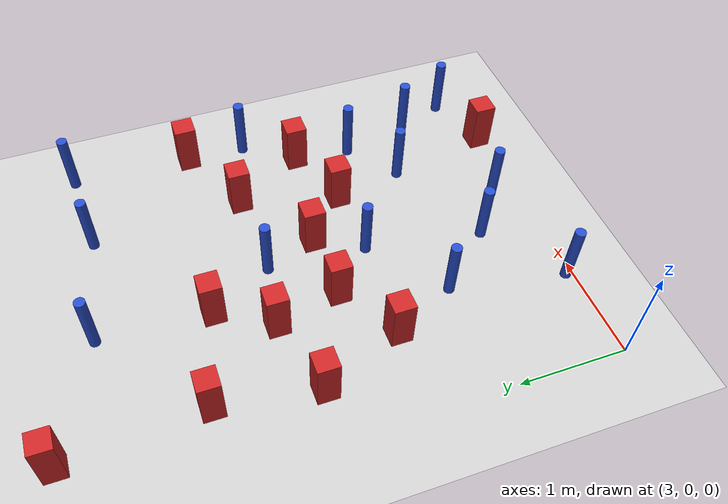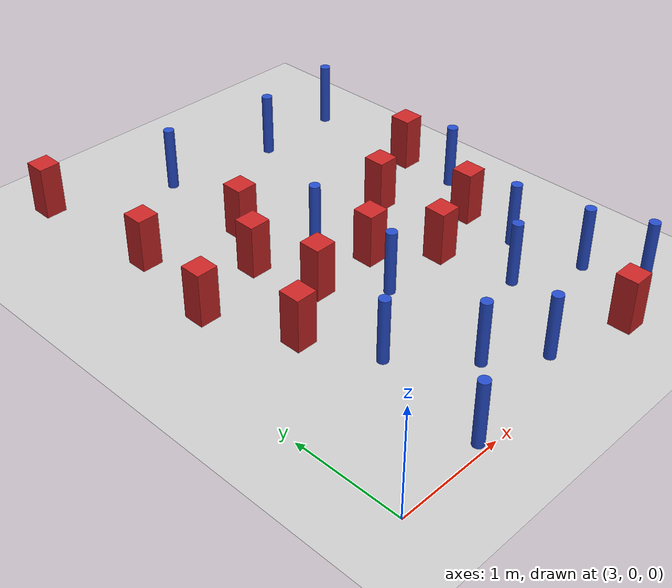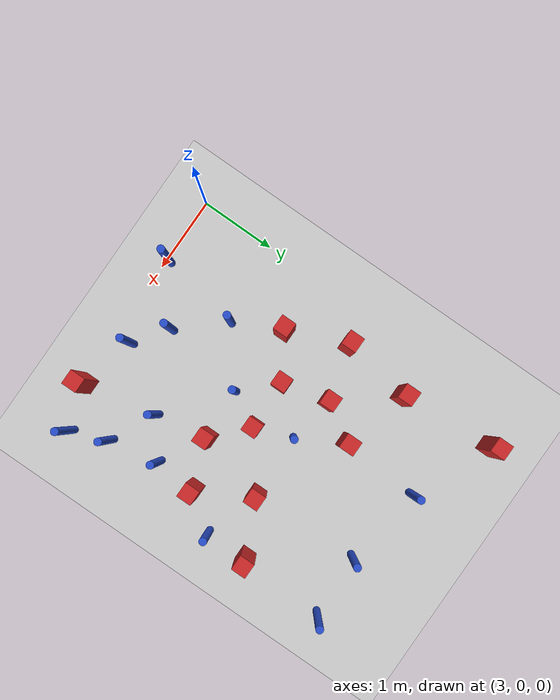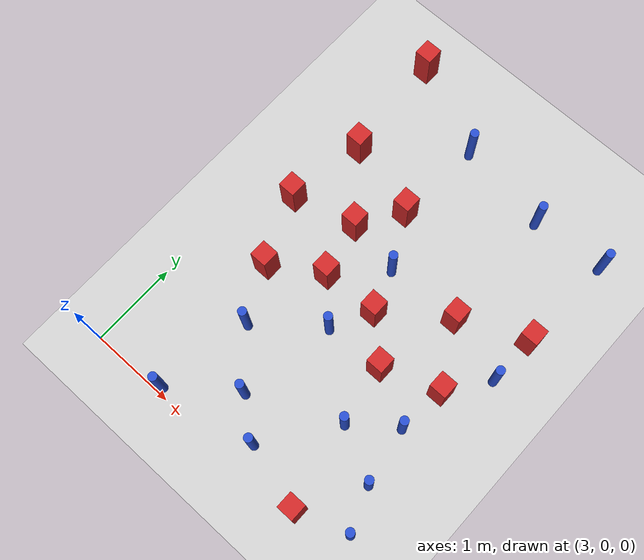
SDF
<sdf version="1.6">
 <world name="default">
  <model name="ground_plane">
   <static>1</static>
   <link name="link">
    <collision name="collision">
     <geometry><plane><normal>0 0 1</normal><size>100 100</size></plane></geometry>
     <surface><friction><ode><mu>100</mu><mu2>50</mu2></ode></friction></surface>
    </collision>
    <visual name="visual">
     <cast_shadows>0</cast_shadows>
     <geometry><plane><normal>0 0 1</normal><size>100 100</size></plane></geometry>
     <material>
      <ambient>1.0 1.0 1.0 1.0</ambient>
      <diffuse>0.8 0.8 0.8 1.0</diffuse>
      <specular>0.01 0.01 0.01 1.000000</specular>
     </material>
    </visual>
   </link>
  </model>
  <model name="pole_obstacle9">
   <static>true</static>
   <pose>4.5817701289 0.596697649328 7.38925637345e-09 -8.47170692799e-08 1.24976765038e-08 -1.74513093018e-07</pose>
   <link name="link">
    <pose>0 0 0.3 0 -0 0</pose>
    <inertial>
     <mass>1</mass>
     <inertia><ixx>0.145833</ixx><ixy>0</ixy><ixz>0</ixz><iyy>0.145833</iyy><iyz>0</iyz><izz>0.125</izz></inertia>
    </inertial>
    <collision name="collision">
     <geometry><cylinder><radius>0.05</radius><length>.6</length></cylinder></geometry>
    </collision>
    <visual name="visual">
     <geometry><cylinder><radius>0.05</radius><length>.6</length></cylinder></geometry>
     <material>
      <script><name>Gazebo/Blue</name><uri>file://media/materials/scripts/gazebo.material</uri></script>
     </material>
    </visual>
   </link>
  </model>
  <model name="pole_obstacle10">
   <static>true</static>
   <pose>5.64205923662 4.10121407407 7.38925637345e-09 -8.47170692796e-08 1.24976764786e-08 -1.74513093032e-07</pose>
   <link name="link">
    <pose>0 0 0.3 0 -0 0</pose>
    <inertial>
     <mass>1</mass>
     <inertia><ixx>0.145833</ixx><ixy>0</ixy><ixz>0</ixz><iyy>0.145833</iyy><iyz>0</iyz><izz>0.125</izz></inertia>
    </inertial>
    <collision name="collision">
     <geometry><cylinder><radius>0.05</radius><length>.6</length></cylinder></geometry>
    </collision>
    <visual name="visual">
     <geometry><cylinder><radius>0.05</radius><length>.6</length></cylinder></geometry>
     <material>
      <script><name>Gazebo/Blue</name><uri>file://media/materials/scripts/gazebo.material</uri></script>
     </material>
    </visual>
   </link>
  </model>
  <model name="pole_obstacle11">
   <static>true</static>
   <pose>4.08247064523 1.15306410399 7.38925637345e-09 -8.471706928e-08 1.24976765134e-08 -1.74513093015e-07</pose>
   <link name="link">
    <pose>0 0 0.3 0 -0 0</pose>
    <inertial>
     <mass>1</mass>
     <inertia><ixx>0.145833</ixx><ixy>0</ixy><ixz>0</ixz><iyy>0.145833</iyy><iyz>0</iyz><izz>0.125</izz></inertia>
    </inertial>
    <collision name="collision">
     <geometry><cylinder><radius>0.05</radius><length>.6</length></cylinder></geometry>
    </collision>
    <visual name="visual">
     <geometry><cylinder><radius>0.05</radius><length>.6</length></cylinder></geometry>
     <material>
      <script><name>Gazebo/Blue</name><uri>file://media/materials/scripts/gazebo.material</uri></script>
     </material>
    </visual>
   </link>
  </model>
  <model name="pole_obstacle13">
   <static>true</static>
   <pose>4.76619048261 1.69995667515 7.38925637345e-09 -8.471706928e-08 1.24976765134e-08 -1.74513093015e-07</pose>
   <link name="link">
    <pose>0 0 0.3 0 -0 0</pose>
    <inertial>
     <mass>1</mass>
     <inertia><ixx>0.145833</ixx><ixy>0</ixy><ixz>0</ixz><iyy>0.145833</iyy><iyz>0</iyz><izz>0.125</izz></inertia>
    </inertial>
    <collision name="collision">
     <geometry><cylinder><radius>0.05</radius><length>.6</length></cylinder></geometry>
    </collision>
    <visual name="visual">
     <geometry><cylinder><radius>0.05</radius><length>.6</length></cylinder></geometry>
     <material>
      <script><name>Gazebo/Blue</name><uri>file://media/materials/scripts/gazebo.material</uri></script>
     </material>
    </visual>
   </link>
  </model>
  <model name="square_post_obstacle13">
   <static>true</static>
   <pose>5.76506913279 0.0766682827222 1.91545236811e-07 -7.35059704564e-06 1.12565212e-07 2.39332434364e-05</pose>
   <link name="link">
    <pose>0 0 0.25 0 -0 0</pose>
    <inertial>
     <mass>100</mass>
     <inertia>
      <ixx>0.166667</ixx>
      <ixy>0</ixy>
      <ixz>0</ixz>
      <iyy>0.166667</iyy>
      <iyz>0</iyz>
      <izz>0.166667</izz>
     </inertia>
    </inertial>
    <collision name="collision"><geometry><box><size>.2 .2 .5</size></box></geometry></collision>
    <visual name="visual">
     <geometry><box><size>.2 .2 .5</size></box></geometry>
     <material>
      <script><name>Gazebo/Red</name><uri>file://media/materials/scripts/gazebo.material</uri></script>
     </material>
    </visual>
   </link>
  </model>
  <model name="square_post_obstacle31">
   <static>true</static>
   <pose>3.61120528066 3.46467088558 1.91545236811e-07 -7.35059704564e-06 1.12565212e-07 2.39332434364e-05</pose>
   <link name="link">
    <pose>0 0 0.25 0 -0 0</pose>
    <inertial>
     <mass>100</mass>
     <inertia>
      <ixx>0.166667</ixx>
      <ixy>0</ixy>
      <ixz>0</ixz>
      <iyy>0.166667</iyy>
      <iyz>0</iyz>
      <izz>0.166667</izz>
     </inertia>
    </inertial>
    <collision name="collision"><geometry><box><size>.2 .2 .5</size></box></geometry></collision>
    <visual name="visual">
     <geometry><box><size>.2 .2 .5</size></box></geometry>
     <material>
      <script><name>Gazebo/Red</name><uri>file://media/materials/scripts/gazebo.material</uri></script>
     </material>
    </visual>
   </link>
  </model>
  <model name="square_post_obstacle43">
   <static>true</static>
   <pose>3.46947250892 2.54650748216 1.91545236811e-07 -7.35059704564e-06 1.12565212e-07 2.39332434364e-05</pose>
   <link name="link">
    <pose>0 0 0.25 0 -0 0</pose>
    <inertial>
     <mass>100</mass>
     <inertia>
      <ixx>0.166667</ixx>
      <ixy>0</ixy>
      <ixz>0</ixz>
      <iyy>0.166667</iyy>
      <iyz>0</iyz>
      <izz>0.166667</izz>
     </inertia>
    </inertial>
    <collision name="collision"><geometry><box><size>.2 .2 .5</size></box></geometry></collision>
    <visual name="visual">
     <geometry><box><size>.2 .2 .5</size></box></geometry>
     <material>
      <script><name>Gazebo/Red</name><uri>file://media/materials/scripts/gazebo.material</uri></script>
     </material>
    </visual>
   </link>
  </model>
  <model name="pole_obstacle72">
   <static>true</static>
   <pose>6.16637277579 0.757675020127 7.38925637345e-09 -8.47170692799e-08 1.24976765038e-08 -1.74513093018e-07</pose>
   <link name="link">
    <pose>0 0 0.3 0 -0 0</pose>
    <inertial>
     <mass>1</mass>
     <inertia><ixx>0.145833</ixx><ixy>0</ixy><ixz>0</ixz><iyy>0.145833</iyy><iyz>0</iyz><izz>0.125</izz></inertia>
    </inertial>
    <collision name="collision">
     <geometry><cylinder><radius>0.05</radius><length>.6</length></cylinder></geometry>
    </collision>
    <visual name="visual">
     <geometry><cylinder><radius>0.05</radius><length>.6</length></cylinder></geometry>
     <material>
      <script><name>Gazebo/Blue</name><uri>file://media/materials/scripts/gazebo.material</uri></script>
     </material>
    </visual>
   </link>
  </model>
  <model name="square_post_obstacle84">
   <static>true</static>
   <pose>6.42989580042 3.0022363274 1.91545236811e-07 -7.35059704564e-06 1.12565212e-07 2.39332434364e-05</pose>
   <link name="link">
    <pose>0 0 0.25 0 -0 0</pose>
    <inertial>
     <mass>100</mass>
     <inertia>
      <ixx>0.166667</ixx>
      <ixy>0</ixy>
      <ixz>0</ixz>
      <iyy>0.166667</iyy>
      <iyz>0</iyz>
      <izz>0.166667</izz>
     </inertia>
    </inertial>
    <collision name="collision"><geometry><box><size>.2 .2 .5</size></box></geometry></collision>
    <visual name="visual">
     <geometry><box><size>.2 .2 .5</size></box></geometry>
     <material>
      <script><name>Gazebo/Red</name><uri>file://media/materials/scripts/gazebo.material</uri></script>
     </material>
    </visual>
   </link>
  </model>
  <model name="square_post_obstacle88">
   <static>true</static>
   <pose>4.34995348564 2.1222153509 1.91545236811e-07 -7.35059704564e-06 1.12565212e-07 2.39332434364e-05</pose>
   <link name="link">
    <pose>0 0 0.25 0 -0 0</pose>
    <inertial>
     <mass>100</mass>
     <inertia>
      <ixx>0.166667</ixx>
      <ixy>0</ixy>
      <ixz>0</ixz>
      <iyy>0.166667</iyy>
      <iyz>0</iyz>
      <izz>0.166667</izz>
     </inertia>
    </inertial>
    <collision name="collision"><geometry><box><size>.2 .2 .5</size></box></geometry></collision>
    <visual name="visual">
     <geometry><box><size>.2 .2 .5</size></box></geometry>
     <material>
      <script><name>Gazebo/Red</name><uri>file://media/materials/scripts/gazebo.material</uri></script>
     </material>
    </visual>
   </link>
  </model>
  <model name="pole_obstacle100">
   <static>true</static>
   <pose>4.56393103715 4.26243662734 7.38925637345e-09 -8.47170692796e-08 1.24976764786e-08 -1.74513093032e-07</pose>
   <link name="link">
    <pose>0 0 0.3 0 -0 0</pose>
    <inertial>
     <mass>1</mass>
     <inertia><ixx>0.145833</ixx><ixy>0</ixy><ixz>0</ixz><iyy>0.145833</iyy><iyz>0</iyz><izz>0.125</izz></inertia>
    </inertial>
    <collision name="collision">
     <geometry><cylinder><radius>0.05</radius><length>.6</length></cylinder></geometry>
    </collision>
    <visual name="visual">
     <geometry><cylinder><radius>0.05</radius><length>.6</length></cylinder></geometry>
     <material>
      <script><name>Gazebo/Blue</name><uri>file://media/materials/scripts/gazebo.material</uri></script>
     </material>
    </visual>
   </link>
  </model>
  <model name="square_post_obstacle93">
   <static>true</static>
   <pose>4.50042449982 3.22805243353 1.91545236811e-07 -7.35059704564e-06 1.12565212e-07 2.39332434364e-05</pose>
   <link name="link">
    <pose>0 0 0.25 0 -0 0</pose>
    <inertial>
     <mass>100</mass>
     <inertia>
      <ixx>0.166667</ixx>
      <ixy>0</ixy>
      <ixz>0</ixz>
      <iyy>0.166667</iyy>
      <iyz>0</iyz>
      <izz>0.166667</izz>
     </inertia>
    </inertial>
    <collision name="collision"><geometry><box><size>.2 .2 .5</size></box></geometry></collision>
    <visual name="visual">
     <geometry><box><size>.2 .2 .5</size></box></geometry>
     <material>
      <script><name>Gazebo/Red</name><uri>file://media/materials/scripts/gazebo.material</uri></script>
     </material>
    </visual>
   </link>
  </model>
  <model name="square_post_obstacle95">
   <static>true</static>
   <pose>3.51024687479 4.73653654691 1.91545236811e-07 -7.35059704564e-06 1.12565212e-07 2.39332434364e-05</pose>
   <link name="link">
    <pose>0 0 0.25 0 -0 0</pose>
    <inertial>
     <mass>100</mass>
     <inertia>
      <ixx>0.166667</ixx>
      <ixy>0</ixy>
      <ixz>0</ixz>
      <iyy>0.166667</iyy>
      <iyz>0</iyz>
      <izz>0.166667</izz>
     </inertia>
    </inertial>
    <collision name="collision"><geometry><box><size>.2 .2 .5</size></box></geometry></collision>
    <visual name="visual">
     <geometry><box><size>.2 .2 .5</size></box></geometry>
     <material>
      <script><name>Gazebo/Red</name><uri>file://media/materials/scripts/gazebo.material</uri></script>
     </material>
    </visual>
   </link>
  </model>
  <model name="square_post_obstacle104">
   <static>true</static>
   <pose>4.19956412237 2.73518294111 1.91545236811e-07 -7.35059704564e-06 1.12565212e-07 2.39332434364e-05</pose>
   <link name="link">
    <pose>0 0 0.25 0 -0 0</pose>
    <inertial>
     <mass>100</mass>
     <inertia>
      <ixx>0.166667</ixx>
      <ixy>0</ixy>
      <ixz>0</ixz>
      <iyy>0.166667</iyy>
      <iyz>0</iyz>
      <izz>0.166667</izz>
     </inertia>
    </inertial>
    <collision name="collision"><geometry><box><size>.2 .2 .5</size></box></geometry></collision>
    <visual name="visual">
     <geometry><box><size>.2 .2 .5</size></box></geometry>
     <material>
      <script><name>Gazebo/Red</name><uri>file://media/materials/scripts/gazebo.material</uri></script>
     </material>
    </visual>
   </link>
  </model>
  <model name="square_post_obstacle110">
   <static>true</static>
   <pose>5.44641598073 1.736956131 1.91545236811e-07 -7.35059704564e-06 1.12565212e-07 2.39332434364e-05</pose>
   <link name="link">
    <pose>0 0 0.25 0 -0 0</pose>
    <inertial>
     <mass>100</mass>
     <inertia>
      <ixx>0.166667</ixx>
      <ixy>0</ixy>
      <ixz>0</ixz>
      <iyy>0.166667</iyy>
      <iyz>0</iyz>
      <izz>0.166667</izz>
     </inertia>
    </inertial>
    <collision name="collision"><geometry><box><size>.2 .2 .5</size></box></geometry></collision>
    <visual name="visual">
     <geometry><box><size>.2 .2 .5</size></box></geometry>
     <material>
      <script><name>Gazebo/Red</name><uri>file://media/materials/scripts/gazebo.material</uri></script>
     </material>
    </visual>
   </link>
  </model>
  <model name="pole_obstacle113">
   <static>true</static>
   <pose>4.8288170901 2.63311452113 7.38925637345e-09 -8.47170692798e-08 1.24976764937e-08 -1.74513093023e-07</pose>
   <link name="link">
    <pose>0 0 0.3 0 -0 0</pose>
    <inertial>
     <mass>1</mass>
     <inertia><ixx>0.145833</ixx><ixy>0</ixy><ixz>0</ixz><iyy>0.145833</iyy><iyz>0</iyz><izz>0.125</izz></inertia>
    </inertial>
    <collision name="collision">
     <geometry><cylinder><radius>0.05</radius><length>.6</length></cylinder></geometry>
    </collision>
    <visual name="visual">
     <geometry><cylinder><radius>0.05</radius><length>.6</length></cylinder></geometry>
     <material>
      <script><name>Gazebo/Blue</name><uri>file://media/materials/scripts/gazebo.material</uri></script>
     </material>
    </visual>
   </link>
  </model>
  <model name="square_post_obstacle119">
   <static>true</static>
   <pose>5.69163526421 2.65849430049 1.91545236811e-07 -7.35059704564e-06 1.12565212e-07 2.39332434364e-05</pose>
   <link name="link">
    <pose>0 0 0.25 0 -0 0</pose>
    <inertial>
     <mass>100</mass>
     <inertia>
      <ixx>0.166667</ixx>
      <ixy>0</ixy>
      <ixz>0</ixz>
      <iyy>0.166667</iyy>
      <iyz>0</iyz>
      <izz>0.166667</izz>
     </inertia>
    </inertial>
    <collision name="collision"><geometry><box><size>.2 .2 .5</size></box></geometry></collision>
    <visual name="visual">
     <geometry><box><size>.2 .2 .5</size></box></geometry>
     <material>
      <script><name>Gazebo/Red</name><uri>file://media/materials/scripts/gazebo.material</uri></script>
     </material>
    </visual>
   </link>
  </model>
  <model name="pole_obstacle120">
   <static>true</static>
   <pose>6.4238691979 2.43641128673 7.38925637345e-09 -8.47170692798e-08 1.24976764937e-08 -1.74513093023e-07</pose>
   <link name="link">
    <pose>0 0 0.3 0 -0 0</pose>
    <inertial>
     <mass>1</mass>
     <inertia><ixx>0.145833</ixx><ixy>0</ixy><ixz>0</ixz><iyy>0.145833</iyy><iyz>0</iyz><izz>0.125</izz></inertia>
    </inertial>
    <collision name="collision">
     <geometry><cylinder><radius>0.05</radius><length>.6</length></cylinder></geometry>
    </collision>
    <visual name="visual">
     <geometry><cylinder><radius>0.05</radius><length>.6</length></cylinder></geometry>
     <material>
      <script><name>Gazebo/Blue</name><uri>file://media/materials/scripts/gazebo.material</uri></script>
     </material>
    </visual>
   </link>
  </model>
  <model name="square_post_obstacle124">
   <static>true</static>
   <pose>6.08778506349 1.96865286695 1.91545236811e-07 -7.35059704564e-06 1.12565212e-07 2.39332434364e-05</pose>
   <link name="link">
    <pose>0 0 0.25 0 -0 0</pose>
    <inertial>
     <mass>100</mass>
     <inertia>
      <ixx>0.166667</ixx>
      <ixy>0</ixy>
      <ixz>0</ixz>
      <iyy>0.166667</iyy>
      <iyz>0</iyz>
      <izz>0.166667</izz>
     </inertia>
    </inertial>
    <collision name="collision"><geometry><box><size>.2 .2 .5</size></box></geometry></collision>
    <visual name="visual">
     <geometry><box><size>.2 .2 .5</size></box></geometry>
     <material>
      <script><name>Gazebo/Red</name><uri>file://media/materials/scripts/gazebo.material</uri></script>
     </material>
    </visual>
   </link>
  </model>
  <model name="pole_obstacle139">
   <static>true</static>
   <pose>6.0413543143 1.41639294812 7.38925637345e-09 -8.471706928e-08 1.24976765134e-08 -1.74513093015e-07</pose>
   <link name="link">
    <pose>0 0 0.3 0 -0 0</pose>
    <inertial>
     <mass>1</mass>
     <inertia><ixx>0.145833</ixx><ixy>0</ixy><ixz>0</ixz><iyy>0.145833</iyy><iyz>0</iyz><izz>0.125</izz></inertia>
    </inertial>
    <collision name="collision">
     <geometry><cylinder><radius>0.05</radius><length>.6</length></cylinder></geometry>
    </collision>
    <visual name="visual">
     <geometry><cylinder><radius>0.05</radius><length>.6</length></cylinder></geometry>
     <material>
      <script><name>Gazebo/Blue</name><uri>file://media/materials/scripts/gazebo.material</uri></script>
     </material>
    </visual>
   </link>
  </model>
  <model name="pole_obstacle154">
   <static>true</static>
   <pose>5.57274888539 1.05326708711 7.38925637345e-09 -8.471706928e-08 1.24976765134e-08 -1.74513093015e-07</pose>
   <link name="link">
    <pose>0 0 0.3 0 -0 0</pose>
    <inertial>
     <mass>1</mass>
     <inertia><ixx>0.145833</ixx><ixy>0</ixy><ixz>0</ixz><iyy>0.145833</iyy><iyz>0</iyz><izz>0.125</izz></inertia>
    </inertial>
    <collision name="collision">
     <geometry><cylinder><radius>0.05</radius><length>.6</length></cylinder></geometry>
    </collision>
    <visual name="visual">
     <geometry><cylinder><radius>0.05</radius><length>.6</length></cylinder></geometry>
     <material>
      <script><name>Gazebo/Blue</name><uri>file://media/materials/scripts/gazebo.material</uri></script>
     </material>
    </visual>
   </link>
  </model>
  <model name="pole_obstacle158">
   <static>true</static>
   <pose>3.88780597992 0.0725775920817 7.38925637345e-09 -8.47170692793e-08 1.24976764419e-08 -1.74513093041e-07</pose>
   <link name="link">
    <pose>0 0 0.3 0 -0 0</pose>
    <inertial>
     <mass>1</mass>
     <inertia><ixx>0.145833</ixx><ixy>0</ixy><ixz>0</ixz><iyy>0.145833</iyy><iyz>0</iyz><izz>0.125</izz></inertia>
    </inertial>
    <collision name="collision">
     <geometry><cylinder><radius>0.05</radius><length>.6</length></cylinder></geometry>
    </collision>
    <visual name="visual">
     <geometry><cylinder><radius>0.05</radius><length>.6</length></cylinder></geometry>
     <material>
      <script><name>Gazebo/Blue</name><uri>file://media/materials/scripts/gazebo.material</uri></script>
     </material>
    </visual>
   </link>
  </model>
  <model name="square_post_obstacle155">
   <static>true</static>
   <pose>5.00041059274 2.14344006434 1.91545236811e-07 -7.35059704564e-06 1.12565212e-07 2.39332434364e-05</pose>
   <link name="link">
    <pose>0 0 0.25 0 -0 0</pose>
    <inertial>
     <mass>100</mass>
     <inertia>
      <ixx>0.166667</ixx>
      <ixy>0</ixy>
      <ixz>0</ixz>
      <iyy>0.166667</iyy>
      <iyz>0</iyz>
      <izz>0.166667</izz>
     </inertia>
    </inertial>
    <collision name="collision"><geometry><box><size>.2 .2 .5</size></box></geometry></collision>
    <visual name="visual">
     <geometry><box><size>.2 .2 .5</size></box></geometry>
     <material>
      <script><name>Gazebo/Red</name><uri>file://media/materials/scripts/gazebo.material</uri></script>
     </material>
    </visual>
   </link>
  </model>
  <model name="square_post_obstacle156">
   <static>true</static>
   <pose>3.78830703492 1.77176407418 1.91545236811e-07 -7.35059704564e-06 1.12565212e-07 2.39332434364e-05</pose>
   <link name="link">
    <pose>0 0 0.25 0 -0 0</pose>
    <inertial>
     <mass>100</mass>
     <inertia>
      <ixx>0.166667</ixx>
      <ixy>0</ixy>
      <ixz>0</ixz>
      <iyy>0.166667</iyy>
      <iyz>0</iyz>
      <izz>0.166667</izz>
     </inertia>
    </inertial>
    <collision name="collision"><geometry><box><size>.2 .2 .5</size></box></geometry></collision>
    <visual name="visual">
     <geometry><box><size>.2 .2 .5</size></box></geometry>
     <material>
      <script><name>Gazebo/Red</name><uri>file://media/materials/scripts/gazebo.material</uri></script>
     </material>
    </visual>
   </link>
  </model>
  <model name="pole_obstacle187">
   <static>true</static>
   <pose>5.0173341681 0.271024867705 7.38925637345e-09 -8.47170692799e-08 1.24976765028e-08 -1.74513093019e-07</pose>
   <link name="link">
    <pose>0 0 0.3 0 -0 0</pose>
    <inertial>
     <mass>1</mass>
     <inertia><ixx>0.145833</ixx><ixy>0</ixy><ixz>0</ixz><iyy>0.145833</iyy><iyz>0</iyz><izz>0.125</izz></inertia>
    </inertial>
    <collision name="collision">
     <geometry><cylinder><radius>0.05</radius><length>.6</length></cylinder></geometry>
    </collision>
    <visual name="visual">
     <geometry><cylinder><radius>0.05</radius><length>.6</length></cylinder></geometry>
     <material>
      <script><name>Gazebo/Blue</name><uri>file://media/materials/scripts/gazebo.material</uri></script>
     </material>
    </visual>
   </link>
  </model>
  <model name="pole_obstacle188">
   <static>true</static>
   <pose>6.48958039079 4.15143401782 7.38925637345e-09 -8.47170692796e-08 1.24976764786e-08 -1.74513093032e-07</pose>
   <link name="link">
    <pose>0 0 0.3 0 -0 0</pose>
    <inertial>
     <mass>1</mass>
     <inertia><ixx>0.145833</ixx><ixy>0</ixy><ixz>0</ixz><iyy>0.145833</iyy><iyz>0</iyz><izz>0.125</izz></inertia>
    </inertial>
    <collision name="collision">
     <geometry><cylinder><radius>0.05</radius><length>.6</length></cylinder></geometry>
    </collision>
    <visual name="visual">
     <geometry><cylinder><radius>0.05</radius><length>.6</length></cylinder></geometry>
     <material>
      <script><name>Gazebo/Blue</name><uri>file://media/materials/scripts/gazebo.material</uri></script>
     </material>
    </visual>
   </link>
  </model>
  <model name="pole_obstacle203">
   <static>true</static>
   <pose>6.35715855158 0.27121500143 7.38925637345e-09 -8.47170692799e-08 1.24976765028e-08 -1.74513093019e-07</pose>
   <link name="link">
    <pose>0 0 0.3 0 -0 0</pose>
    <inertial>
     <mass>1</mass>
     <inertia><ixx>0.145833</ixx><ixy>0</ixy><ixz>0</ixz><iyy>0.145833</iyy><iyz>0</iyz><izz>0.125</izz></inertia>
    </inertial>
    <collision name="collision">
     <geometry><cylinder><radius>0.05</radius><length>.6</length></cylinder></geometry>
    </collision>
    <visual name="visual">
     <geometry><cylinder><radius>0.05</radius><length>.6</length></cylinder></geometry>
     <material>
      <script><name>Gazebo/Blue</name><uri>file://media/materials/scripts/gazebo.material</uri></script>
     </material>
    </visual>
   </link>
  </model>
 </world>
</sdf>
